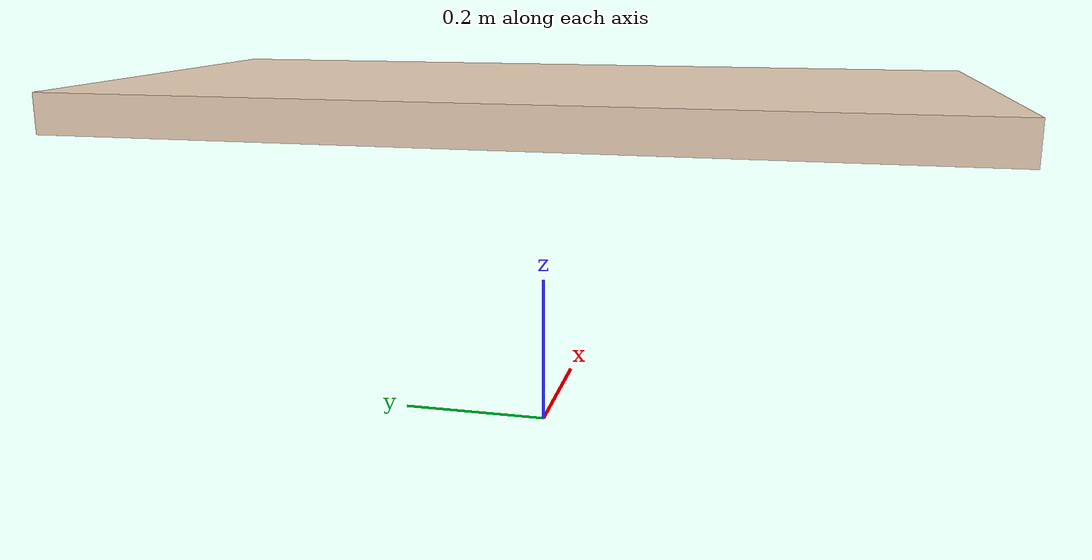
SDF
<?xml version="1.0"?>
<sdf version="1.9">
  <world name="scene">
  <model name="table_top">
    <link name="table_top_link">
      <visual name="visual">
        <pose>0 0 0.445 0 0 0</pose>
        <geometry>
          <box>
            <size>0.55 1.1 0.05</size>
          </box>
        </geometry>
        <material>
         <diffuse>0.9 0.8 0.7 1.0</diffuse>
        </material>
      </visual>
      <collision name="collision">
        <pose>0 0 0.445  0 0 0</pose>
        <geometry>
          <box>
            <size>0.55 1.1 0.05</size>
          </box>
        </geometry>
          <drake:proximity_properties>
            <drake:mu_dynamic>0.3</drake:mu_dynamic>
            <drake:mu_static>0.3</drake:mu_static>
            <drake:mesh_resolution_hint>0.5</drake:mesh_resolution_hint>
            <drake:hunt_crossley_dissipation>5</drake:hunt_crossley_dissipation>
            <!-- TODO(sloretz) make compliant instead of rigid -->
            <drake:rigid_hydroelastic/>
          </drake:proximity_properties>
      </collision>
    </link>
    <frame name="table_top_center">
      <pose relative_to="table_top_link">0 0 0.47 0 0 0</pose>
    </frame>
  </model>
    </world>
</sdf>

    <model name="box">
      <pose>0.8 0 3.8 0 0 0</pose>
      <link name="box_top_link">
        <inertial>
          <inertia>
            <ixx>1.0</ixx>
            <iyy>1.0</iyy>
            <izz>1.0</izz>
            <ixy>0</ixy>
            <ixz>0</ixz>
            <iyz>0</iyz>
          </inertia>
          <mass>1</mass>
        </inertial>
        <collision name="collision">
          <geometry>
          <box>
            <size>0.2 0.2 0.2</size>
          </box>
          </geometry>
          <drake:proximity_properties>
            <drake:mu_dynamic>0.3</drake:mu_dynamic>
            <drake:mu_static>0.3</drake:mu_static>
            <drake:mesh_resolution_hint>0.5</drake:mesh_resolution_hint>
            <drake:hydroelastic_modulus>10000</drake:hydroelastic_modulus>
            <drake:hunt_crossley_dissipation>5</drake:hunt_crossley_dissipation>
            <drake:compliant_hydroelastic/>
          </drake:proximity_properties>
        </collision>
        <visual name="visual">
          <geometry>
          <box>
            <size>0.2 0.2 0.2</size>
          </box>
          </geometry>
          <material>
            <diffuse>1.0 0.55 0.0 0.5</diffuse>
          </material>
        </visual>
      </link>
    </model>

        <model name="inclined_plane">
      <static>true</static>
      <pose degrees="true">0 -10 0 -90 0 0</pose>
      <link name="link">
        <collision name="collision">
          <geometry>
            <plane/>
          </geometry>
          <drake:proximity_properties>
            <drake:mu_dynamic>0.3</drake:mu_dynamic>
            <drake:mu_static>0.3</drake:mu_static>
            <drake:mesh_resolution_hint>0.5</drake:mesh_resolution_hint>
            <drake:hunt_crossley_dissipation>5</drake:hunt_crossley_dissipation>
            <!-- TODO(sloretz) make compliant instead of rigid -->
            <drake:rigid_hydroelastic/>
          </drake:proximity_properties>
        </collision>
        <visual name="visual">
          <geometry>
            <plane>
              <size>50 5</size>
            </plane>
          </geometry>
          <material>
            <diffuse>0.5 0.5 0.5 0.5</diffuse>
          </material>
        </visual>
      </link>
    </model>
    <model name="vertical_plane">
      <static>true</static>
      <pose>0 0 0 0 0 0</pose>
      <link name="link">
        <collision name="collision">
          <geometry>
            <plane/>
          </geometry>
          <drake:proximity_properties>
            <drake:mu_dynamic>0.3</drake:mu_dynamic>
            <drake:mu_static>0.3</drake:mu_static>
            <drake:mesh_resolution_hint>0.5</drake:mesh_resolution_hint>
            <drake:hunt_crossley_dissipation>5</drake:hunt_crossley_dissipation>
            <!-- TODO(sloretz) make compliant instead of rigid -->
            <drake:rigid_hydroelastic/>
          </drake:proximity_properties>
        </collision>
        <visual name="visual">
          <geometry>
            <plane>
              <size>50 50</size>
            </plane>
          </geometry>
          <material>
            <diffuse>0.5 0.5 0.5 0.5</diffuse>
          </material>
        </visual>
      </link>
    </model>
